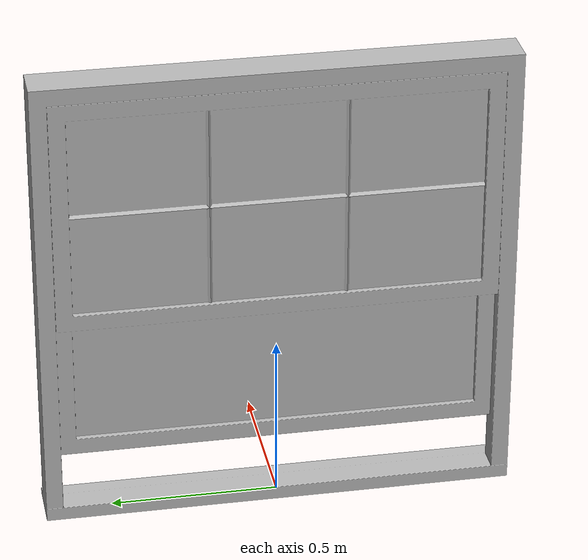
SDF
<?xml version='1.0'?>
<sdf version='1.4'>
  <model name='767'>
    <pose>0 0 0 0 0 0</pose>
    <static>true</static>
    <link name='link'>
      <collision name='collision'>
        <pose>0 0 0 0 0 0</pose>
        <geometry>
          <box>
            <size>0.1575 1.4 2</size>
          </box>
        </geometry>
      </collision>
      <visual name='visual'>
        <pose>0 0 0 0 0 0</pose>
        <geometry>
          <mesh><uri>model://767/767.dae</uri></mesh>
        </geometry>
      </visual>
    </link>
  </model>
</sdf>
